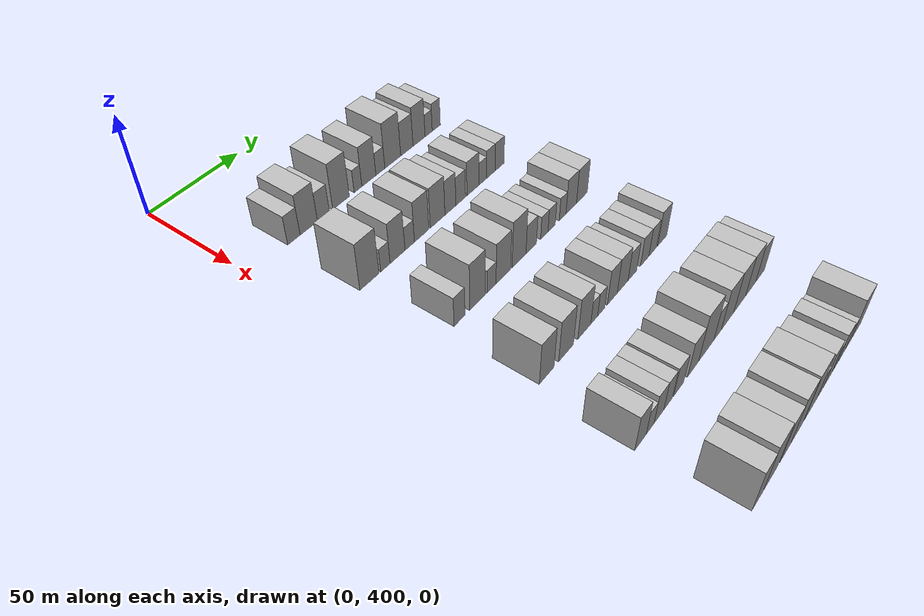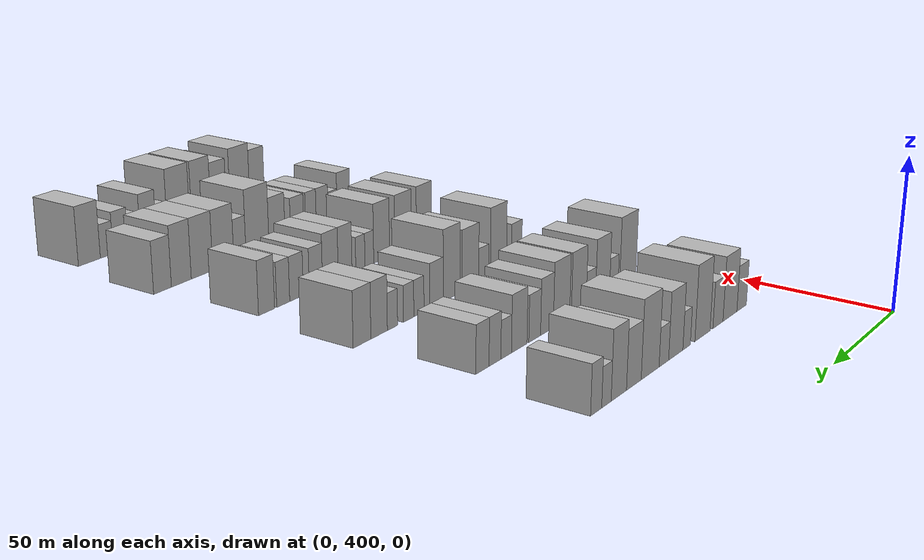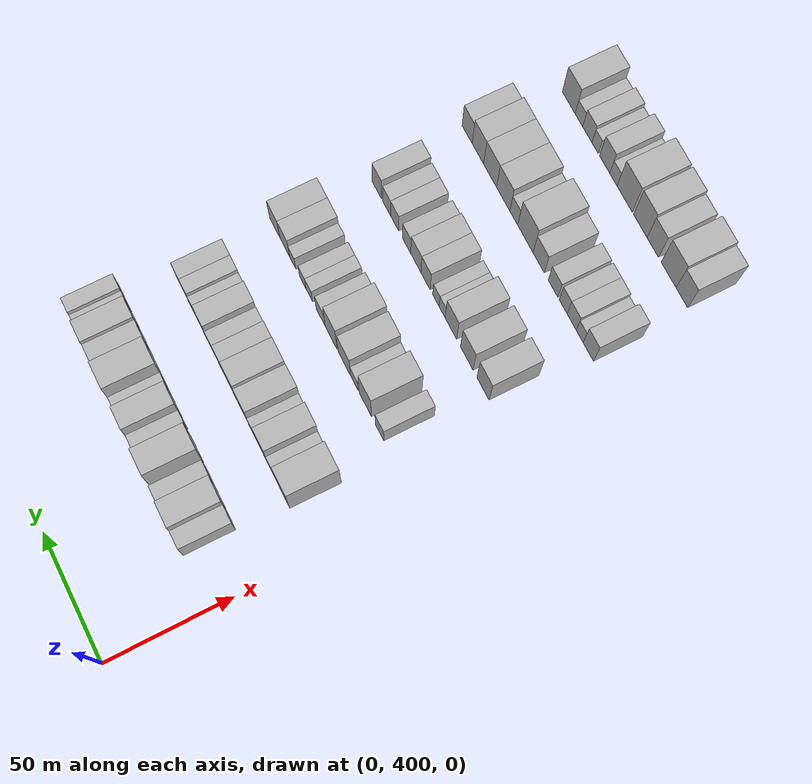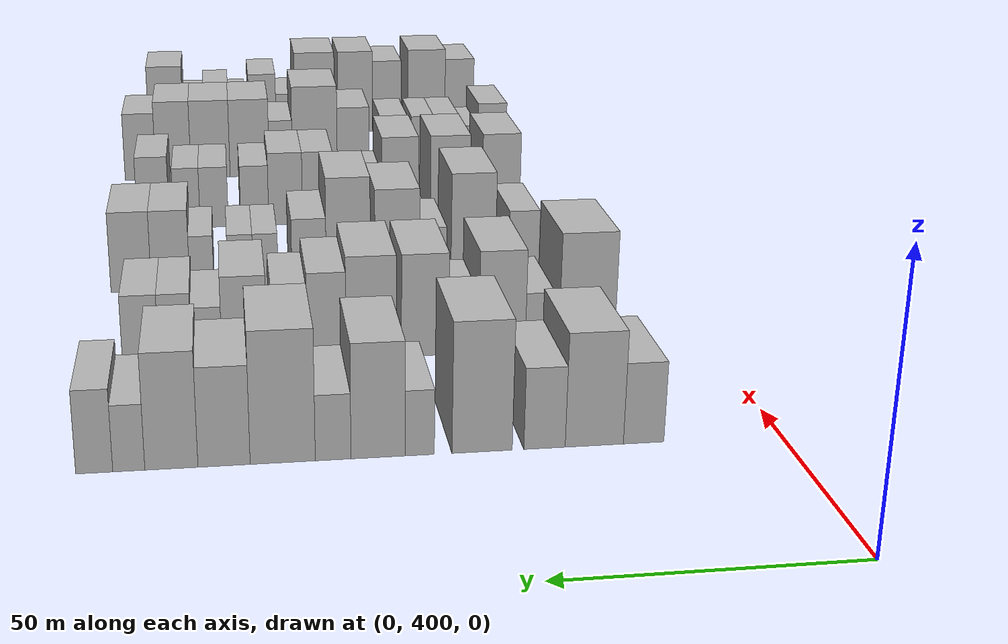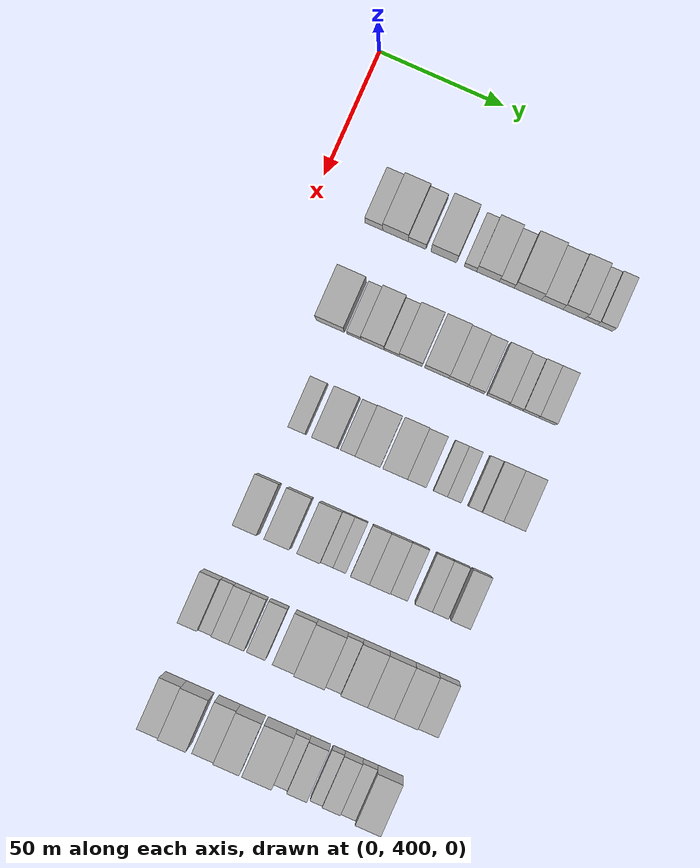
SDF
<sdf version="1.6">
 <world name="default">
  <model name="building_105">
   <static>1</static>
   <pose>50.0000 424.2901 0 0.000000 0.000000 0.000000</pose>
   <link name="link">
    <pose>0 0 7.50 0 0 0</pose>
    <collision name="collision"><geometry><box><size>20.0000 7.0942 15.0000</size></box></geometry></collision>
    <visual name="visual">
     <cast_shadows>0</cast_shadows>
     <geometry><box><size>20.0000 7.0942 15.0000</size></box></geometry>
     <material>
      <script>
       <uri>model://HANNAS_wall/materials/scripts</uri>
       <uri>model://HANNAS_wall/materials/textures</uri>
       <name>vrc/HANNAS_wall</name>
      </script>
     </material>
    </visual>
   </link>
  </model>
  <model name="building_106">
   <static>1</static>
   <pose>50.0000 432.9012 0 0.000000 0.000000 0.000000</pose>
   <link name="link">
    <pose>0 0 10.50 0 0 0</pose>
    <collision name="collision"><geometry><box><size>20.0000 10.1280 21.0000</size></box></geometry></collision>
    <visual name="visual">
     <cast_shadows>0</cast_shadows>
     <geometry><box><size>20.0000 10.1280 21.0000</size></box></geometry>
     <material>
      <script>
       <uri>model://HANNAS_wall/materials/scripts</uri>
       <uri>model://HANNAS_wall/materials/textures</uri>
       <name>vrc/HANNAS_wall</name>
      </script>
     </material>
    </visual>
   </link>
  </model>
  <model name="building_107">
   <static>1</static>
   <pose>50.0000 441.5331 0 0.000000 0.000000 0.000000</pose>
   <link name="link">
    <pose>0 0 7.50 0 0 0</pose>
    <collision name="collision"><geometry><box><size>20.0000 7.1359 15.0000</size></box></geometry></collision>
    <visual name="visual">
     <cast_shadows>0</cast_shadows>
     <geometry><box><size>20.0000 7.1359 15.0000</size></box></geometry>
     <material>
      <script>
       <uri>model://HANNAS_wall/materials/scripts</uri>
       <uri>model://HANNAS_wall/materials/textures</uri>
       <name>vrc/HANNAS_wall</name>
      </script>
     </material>
    </visual>
   </link>
  </model>
  <model name="building_108">
   <static>1</static>
   <pose>50.0000 452.2621 0 0.000000 0.000000 0.000000</pose>
   <link name="link">
    <pose>0 0 12.00 0 0 0</pose>
    <collision name="collision"><geometry><box><size>20.0000 10.3221 24.0000</size></box></geometry></collision>
    <visual name="visual">
     <cast_shadows>0</cast_shadows>
     <geometry><box><size>20.0000 10.3221 24.0000</size></box></geometry>
     <material>
      <script>
       <uri>model://HANNAS_wall/materials/scripts</uri>
       <uri>model://HANNAS_wall/materials/textures</uri>
       <name>vrc/HANNAS_wall</name>
      </script>
     </material>
    </visual>
   </link>
  </model>
  <model name="building_109">
   <static>1</static>
   <pose>50.0000 462.8993 0 0.000000 0.000000 0.000000</pose>
   <link name="link">
    <pose>0 0 6.00 0 0 0</pose>
    <collision name="collision"><geometry><box><size>20.0000 4.9524 12.0000</size></box></geometry></collision>
    <visual name="visual">
     <cast_shadows>0</cast_shadows>
     <geometry><box><size>20.0000 4.9524 12.0000</size></box></geometry>
     <material>
      <script>
       <uri>model://HANNAS_wall/materials/scripts</uri>
       <uri>model://HANNAS_wall/materials/textures</uri>
       <name>vrc/HANNAS_wall</name>
      </script>
     </material>
    </visual>
   </link>
  </model>
  <model name="building_110">
   <static>1</static>
   <pose>50.0000 469.9442 0 0.000000 0.000000 0.000000</pose>
   <link name="link">
    <pose>0 0 10.50 0 0 0</pose>
    <collision name="collision"><geometry><box><size>20.0000 9.1373 21.0000</size></box></geometry></collision>
    <visual name="visual">
     <cast_shadows>0</cast_shadows>
     <geometry><box><size>20.0000 9.1373 21.0000</size></box></geometry>
     <material>
      <script>
       <uri>model://HANNAS_wall/materials/scripts</uri>
       <uri>model://HANNAS_wall/materials/textures</uri>
       <name>vrc/HANNAS_wall</name>
      </script>
     </material>
    </visual>
   </link>
  </model>
  <model name="building_111">
   <static>1</static>
   <pose>50.0000 477.4980 0 0.000000 0.000000 0.000000</pose>
   <link name="link">
    <pose>0 0 6.00 0 0 0</pose>
    <collision name="collision"><geometry><box><size>20.0000 5.9704 12.0000</size></box></geometry></collision>
    <visual name="visual">
     <cast_shadows>0</cast_shadows>
     <geometry><box><size>20.0000 5.9704 12.0000</size></box></geometry>
     <material>
      <script>
       <uri>model://HANNAS_wall/materials/scripts</uri>
       <uri>model://HANNAS_wall/materials/textures</uri>
       <name>vrc/HANNAS_wall</name>
      </script>
     </material>
    </visual>
   </link>
  </model>
  <model name="building_112">
   <static>1</static>
   <pose>50.0000 485.8997 0 0.000000 0.000000 0.000000</pose>
   <link name="link">
    <pose>0 0 12.00 0 0 0</pose>
    <collision name="collision"><geometry><box><size>20.0000 10.8329 24.0000</size></box></geometry></collision>
    <visual name="visual">
     <cast_shadows>0</cast_shadows>
     <geometry><box><size>20.0000 10.8329 24.0000</size></box></geometry>
     <material>
      <script>
       <uri>model://HANNAS_wall/materials/scripts</uri>
       <uri>model://HANNAS_wall/materials/textures</uri>
       <name>vrc/HANNAS_wall</name>
      </script>
     </material>
    </visual>
   </link>
  </model>
  <model name="building_113">
   <static>1</static>
   <pose>50.0000 495.6223 0 0.000000 0.000000 0.000000</pose>
   <link name="link">
    <pose>0 0 9.00 0 0 0</pose>
    <collision name="collision"><geometry><box><size>20.0000 8.6124 18.0000</size></box></geometry></collision>
    <visual name="visual">
     <cast_shadows>0</cast_shadows>
     <geometry><box><size>20.0000 8.6124 18.0000</size></box></geometry>
     <material>
      <script>
       <uri>model://HANNAS_wall/materials/scripts</uri>
       <uri>model://HANNAS_wall/materials/textures</uri>
       <name>vrc/HANNAS_wall</name>
      </script>
     </material>
    </visual>
   </link>
  </model>
  <model name="building_114">
   <static>1</static>
   <pose>50.0000 504.2723 0 0.000000 0.000000 0.000000</pose>
   <link name="link">
    <pose>0 0 10.50 0 0 0</pose>
    <collision name="collision"><geometry><box><size>20.0000 8.6876 21.0000</size></box></geometry></collision>
    <visual name="visual">
     <cast_shadows>0</cast_shadows>
     <geometry><box><size>20.0000 8.6876 21.0000</size></box></geometry>
     <material>
      <script>
       <uri>model://HANNAS_wall/materials/scripts</uri>
       <uri>model://HANNAS_wall/materials/textures</uri>
       <name>vrc/HANNAS_wall</name>
      </script>
     </material>
    </visual>
   </link>
  </model>
  <model name="building_115">
   <static>1</static>
   <pose>50.0000 511.2265 0 0.000000 0.000000 0.000000</pose>
   <link name="link">
    <pose>0 0 6.00 0 0 0</pose>
    <collision name="collision"><geometry><box><size>20.0000 5.2208 12.0000</size></box></geometry></collision>
    <visual name="visual">
     <cast_shadows>0</cast_shadows>
     <geometry><box><size>20.0000 5.2208 12.0000</size></box></geometry>
     <material>
      <script>
       <uri>model://HANNAS_wall/materials/scripts</uri>
       <uri>model://HANNAS_wall/materials/textures</uri>
       <name>vrc/HANNAS_wall</name>
      </script>
     </material>
    </visual>
   </link>
  </model>
  <model name="building_116">
   <static>1</static>
   <pose>50.0000 516.8386 0 0.000000 0.000000 0.000000</pose>
   <link name="link">
    <pose>0 0 7.50 0 0 0</pose>
    <collision name="collision"><geometry><box><size>20.0000 6.0033 15.0000</size></box></geometry></collision>
    <visual name="visual">
     <cast_shadows>0</cast_shadows>
     <geometry><box><size>20.0000 6.0033 15.0000</size></box></geometry>
     <material>
      <script>
       <uri>model://HANNAS_wall/materials/scripts</uri>
       <uri>model://HANNAS_wall/materials/textures</uri>
       <name>vrc/HANNAS_wall</name>
      </script>
     </material>
    </visual>
   </link>
  </model>
  <model name="building_237">
   <static>1</static>
   <pose>90.0000 424.5723 0 0.000000 0.000000 0.000000</pose>
   <link name="link">
    <pose>0 0 12.00 0 0 0</pose>
    <collision name="collision"><geometry><box><size>20.0000 11.1459 24.0000</size></box></geometry></collision>
    <visual name="visual">
     <cast_shadows>0</cast_shadows>
     <geometry><box><size>20.0000 11.1459 24.0000</size></box></geometry>
     <material>
      <script>
       <uri>model://HANNAS_wall/materials/scripts</uri>
       <uri>model://HANNAS_wall/materials/textures</uri>
       <name>vrc/HANNAS_wall</name>
      </script>
     </material>
    </visual>
   </link>
  </model>
  <model name="building_238">
   <static>1</static>
   <pose>90.0000 433.9766 0 0.000000 0.000000 0.000000</pose>
   <link name="link">
    <pose>0 0 6.00 0 0 0</pose>
    <collision name="collision"><geometry><box><size>20.0000 5.6627 12.0000</size></box></geometry></collision>
    <visual name="visual">
     <cast_shadows>0</cast_shadows>
     <geometry><box><size>20.0000 5.6627 12.0000</size></box></geometry>
     <material>
      <script>
       <uri>model://HANNAS_wall/materials/scripts</uri>
       <uri>model://HANNAS_wall/materials/textures</uri>
       <name>vrc/HANNAS_wall</name>
      </script>
     </material>
    </visual>
   </link>
  </model>
  <model name="building_239">
   <static>1</static>
   <pose>90.0000 441.3888 0 0.000000 0.000000 0.000000</pose>
   <link name="link">
    <pose>0 0 10.50 0 0 0</pose>
    <collision name="collision"><geometry><box><size>20.0000 9.1617 21.0000</size></box></geometry></collision>
    <visual name="visual">
     <cast_shadows>0</cast_shadows>
     <geometry><box><size>20.0000 9.1617 21.0000</size></box></geometry>
     <material>
      <script>
       <uri>model://HANNAS_wall/materials/scripts</uri>
       <uri>model://HANNAS_wall/materials/textures</uri>
       <name>vrc/HANNAS_wall</name>
      </script>
     </material>
    </visual>
   </link>
  </model>
  <model name="building_240">
   <static>1</static>
   <pose>90.0000 448.9365 0 0.000000 0.000000 0.000000</pose>
   <link name="link">
    <pose>0 0 6.00 0 0 0</pose>
    <collision name="collision"><geometry><box><size>20.0000 5.9335 12.0000</size></box></geometry></collision>
    <visual name="visual">
     <cast_shadows>0</cast_shadows>
     <geometry><box><size>20.0000 5.9335 12.0000</size></box></geometry>
     <material>
      <script>
       <uri>model://HANNAS_wall/materials/scripts</uri>
       <uri>model://HANNAS_wall/materials/textures</uri>
       <name>vrc/HANNAS_wall</name>
      </script>
     </material>
    </visual>
   </link>
  </model>
  <model name="building_241">
   <static>1</static>
   <pose>90.0000 456.5096 0 0.000000 0.000000 0.000000</pose>
   <link name="link">
    <pose>0 0 10.50 0 0 0</pose>
    <collision name="collision"><geometry><box><size>20.0000 9.2127 21.0000</size></box></geometry></collision>
    <visual name="visual">
     <cast_shadows>0</cast_shadows>
     <geometry><box><size>20.0000 9.2127 21.0000</size></box></geometry>
     <material>
      <script>
       <uri>model://HANNAS_wall/materials/scripts</uri>
       <uri>model://HANNAS_wall/materials/textures</uri>
       <name>vrc/HANNAS_wall</name>
      </script>
     </material>
    </visual>
   </link>
  </model>
  <model name="building_242">
   <static>1</static>
   <pose>90.0000 466.9818 0 0.000000 0.000000 0.000000</pose>
   <link name="link">
    <pose>0 0 10.50 0 0 0</pose>
    <collision name="collision"><geometry><box><size>20.0000 9.7318 21.0000</size></box></geometry></collision>
    <visual name="visual">
     <cast_shadows>0</cast_shadows>
     <geometry><box><size>20.0000 9.7318 21.0000</size></box></geometry>
     <material>
      <script>
       <uri>model://HANNAS_wall/materials/scripts</uri>
       <uri>model://HANNAS_wall/materials/textures</uri>
       <name>vrc/HANNAS_wall</name>
      </script>
     </material>
    </visual>
   </link>
  </model>
  <model name="building_243">
   <static>1</static>
   <pose>90.0000 475.5731 0 0.000000 0.000000 0.000000</pose>
   <link name="link">
    <pose>0 0 9.00 0 0 0</pose>
    <collision name="collision"><geometry><box><size>20.0000 7.4509 18.0000</size></box></geometry></collision>
    <visual name="visual">
     <cast_shadows>0</cast_shadows>
     <geometry><box><size>20.0000 7.4509 18.0000</size></box></geometry>
     <material>
      <script>
       <uri>model://HANNAS_wall/materials/scripts</uri>
       <uri>model://HANNAS_wall/materials/textures</uri>
       <name>vrc/HANNAS_wall</name>
      </script>
     </material>
    </visual>
   </link>
  </model>
  <model name="building_244">
   <static>1</static>
   <pose>90.0000 482.6487 0 0.000000 0.000000 0.000000</pose>
   <link name="link">
    <pose>0 0 7.50 0 0 0</pose>
    <collision name="collision"><geometry><box><size>20.0000 6.7003 15.0000</size></box></geometry></collision>
    <visual name="visual">
     <cast_shadows>0</cast_shadows>
     <geometry><box><size>20.0000 6.7003 15.0000</size></box></geometry>
     <material>
      <script>
       <uri>model://HANNAS_wall/materials/scripts</uri>
       <uri>model://HANNAS_wall/materials/textures</uri>
       <name>vrc/HANNAS_wall</name>
      </script>
     </material>
    </visual>
   </link>
  </model>
  <model name="building_245">
   <static>1</static>
   <pose>90.0000 491.2784 0 0.000000 0.000000 0.000000</pose>
   <link name="link">
    <pose>0 0 9.00 0 0 0</pose>
    <collision name="collision"><geometry><box><size>20.0000 8.5590 18.0000</size></box></geometry></collision>
    <visual name="visual">
     <cast_shadows>0</cast_shadows>
     <geometry><box><size>20.0000 8.5590 18.0000</size></box></geometry>
     <material>
      <script>
       <uri>model://HANNAS_wall/materials/scripts</uri>
       <uri>model://HANNAS_wall/materials/textures</uri>
       <name>vrc/HANNAS_wall</name>
      </script>
     </material>
    </visual>
   </link>
  </model>
  <model name="building_246">
   <static>1</static>
   <pose>90.0000 498.4065 0 0.000000 0.000000 0.000000</pose>
   <link name="link">
    <pose>0 0 6.00 0 0 0</pose>
    <collision name="collision"><geometry><box><size>20.0000 5.6973 12.0000</size></box></geometry></collision>
    <visual name="visual">
     <cast_shadows>0</cast_shadows>
     <geometry><box><size>20.0000 5.6973 12.0000</size></box></geometry>
     <material>
      <script>
       <uri>model://HANNAS_wall/materials/scripts</uri>
       <uri>model://HANNAS_wall/materials/textures</uri>
       <name>vrc/HANNAS_wall</name>
      </script>
     </material>
    </visual>
   </link>
  </model>
  <model name="building_247">
   <static>1</static>
   <pose>90.0000 504.3689 0 0.000000 0.000000 0.000000</pose>
   <link name="link">
    <pose>0 0 7.50 0 0 0</pose>
    <collision name="collision"><geometry><box><size>20.0000 6.2275 15.0000</size></box></geometry></collision>
    <visual name="visual">
     <cast_shadows>0</cast_shadows>
     <geometry><box><size>20.0000 6.2275 15.0000</size></box></geometry>
     <material>
      <script>
       <uri>model://HANNAS_wall/materials/scripts</uri>
       <uri>model://HANNAS_wall/materials/textures</uri>
       <name>vrc/HANNAS_wall</name>
      </script>
     </material>
    </visual>
   </link>
  </model>
  <model name="building_248">
   <static>1</static>
   <pose>90.0000 510.8841 0 0.000000 0.000000 0.000000</pose>
   <link name="link">
    <pose>0 0 7.50 0 0 0</pose>
    <collision name="collision"><geometry><box><size>20.0000 6.8029 15.0000</size></box></geometry></collision>
    <visual name="visual">
     <cast_shadows>0</cast_shadows>
     <geometry><box><size>20.0000 6.8029 15.0000</size></box></geometry>
     <material>
      <script>
       <uri>model://HANNAS_wall/materials/scripts</uri>
       <uri>model://HANNAS_wall/materials/textures</uri>
       <name>vrc/HANNAS_wall</name>
      </script>
     </material>
    </visual>
   </link>
  </model>
  <model name="building_375">
   <static>1</static>
   <pose>130.0000 429.1087 0 0.000000 0.000000 0.000000</pose>
   <link name="link">
    <pose>0 0 7.50 0 0 0</pose>
    <collision name="collision"><geometry><box><size>20.0000 6.6750 15.0000</size></box></geometry></collision>
    <visual name="visual">
     <cast_shadows>0</cast_shadows>
     <geometry><box><size>20.0000 6.6750 15.0000</size></box></geometry>
     <material>
      <script>
       <uri>model://HANNAS_wall/materials/scripts</uri>
       <uri>model://HANNAS_wall/materials/textures</uri>
       <name>vrc/HANNAS_wall</name>
      </script>
     </material>
    </visual>
   </link>
  </model>
  <model name="building_376">
   <static>1</static>
   <pose>130.0000 440.3710 0 0.000000 0.000000 0.000000</pose>
   <link name="link">
    <pose>0 0 12.00 0 0 0</pose>
    <collision name="collision"><geometry><box><size>20.0000 9.8495 24.0000</size></box></geometry></collision>
    <visual name="visual">
     <cast_shadows>0</cast_shadows>
     <geometry><box><size>20.0000 9.8495 24.0000</size></box></geometry>
     <material>
      <script>
       <uri>model://HANNAS_wall/materials/scripts</uri>
       <uri>model://HANNAS_wall/materials/textures</uri>
       <name>vrc/HANNAS_wall</name>
      </script>
     </material>
    </visual>
   </link>
  </model>
  <model name="building_377">
   <static>1</static>
   <pose>130.0000 449.2761 0 0.000000 0.000000 0.000000</pose>
   <link name="link">
    <pose>0 0 6.00 0 0 0</pose>
    <collision name="collision"><geometry><box><size>20.0000 5.9607 12.0000</size></box></geometry></collision>
    <visual name="visual">
     <cast_shadows>0</cast_shadows>
     <geometry><box><size>20.0000 5.9607 12.0000</size></box></geometry>
     <material>
      <script>
       <uri>model://HANNAS_wall/materials/scripts</uri>
       <uri>model://HANNAS_wall/materials/textures</uri>
       <name>vrc/HANNAS_wall</name>
      </script>
     </material>
    </visual>
   </link>
  </model>
  <model name="building_378">
   <static>1</static>
   <pose>130.0000 457.1550 0 0.000000 0.000000 0.000000</pose>
   <link name="link">
    <pose>0 0 10.50 0 0 0</pose>
    <collision name="collision"><geometry><box><size>20.0000 9.7971 21.0000</size></box></geometry></collision>
    <visual name="visual">
     <cast_shadows>0</cast_shadows>
     <geometry><box><size>20.0000 9.7971 21.0000</size></box></geometry>
     <material>
      <script>
       <uri>model://HANNAS_wall/materials/scripts</uri>
       <uri>model://HANNAS_wall/materials/textures</uri>
       <name>vrc/HANNAS_wall</name>
      </script>
     </material>
    </visual>
   </link>
  </model>
  <model name="building_379">
   <static>1</static>
   <pose>130.0000 467.8586 0 0.000000 0.000000 0.000000</pose>
   <link name="link">
    <pose>0 0 12.00 0 0 0</pose>
    <collision name="collision"><geometry><box><size>20.0000 9.6101 24.0000</size></box></geometry></collision>
    <visual name="visual">
     <cast_shadows>0</cast_shadows>
     <geometry><box><size>20.0000 9.6101 24.0000</size></box></geometry>
     <material>
      <script>
       <uri>model://HANNAS_wall/materials/scripts</uri>
       <uri>model://HANNAS_wall/materials/textures</uri>
       <name>vrc/HANNAS_wall</name>
      </script>
     </material>
    </visual>
   </link>
  </model>
  <model name="building_380">
   <static>1</static>
   <pose>130.0000 476.3832 0 0.000000 0.000000 0.000000</pose>
   <link name="link">
    <pose>0 0 7.50 0 0 0</pose>
    <collision name="collision"><geometry><box><size>20.0000 7.4392 15.0000</size></box></geometry></collision>
    <visual name="visual">
     <cast_shadows>0</cast_shadows>
     <geometry><box><size>20.0000 7.4392 15.0000</size></box></geometry>
     <material>
      <script>
       <uri>model://HANNAS_wall/materials/scripts</uri>
       <uri>model://HANNAS_wall/materials/textures</uri>
       <name>vrc/HANNAS_wall</name>
      </script>
     </material>
    </visual>
   </link>
  </model>
  <model name="building_381">
   <static>1</static>
   <pose>130.0000 485.8040 0 0.000000 0.000000 0.000000</pose>
   <link name="link">
    <pose>0 0 6.00 0 0 0</pose>
    <collision name="collision"><geometry><box><size>20.0000 5.4025 12.0000</size></box></geometry></collision>
    <visual name="visual">
     <cast_shadows>0</cast_shadows>
     <geometry><box><size>20.0000 5.4025 12.0000</size></box></geometry>
     <material>
      <script>
       <uri>model://HANNAS_wall/materials/scripts</uri>
       <uri>model://HANNAS_wall/materials/textures</uri>
       <name>vrc/HANNAS_wall</name>
      </script>
     </material>
    </visual>
   </link>
  </model>
  <model name="building_382">
   <static>1</static>
   <pose>130.0000 491.2211 0 0.000000 0.000000 0.000000</pose>
   <link name="link">
    <pose>0 0 6.00 0 0 0</pose>
    <collision name="collision"><geometry><box><size>20.0000 5.4317 12.0000</size></box></geometry></collision>
    <visual name="visual">
     <cast_shadows>0</cast_shadows>
     <geometry><box><size>20.0000 5.4317 12.0000</size></box></geometry>
     <material>
      <script>
       <uri>model://HANNAS_wall/materials/scripts</uri>
       <uri>model://HANNAS_wall/materials/textures</uri>
       <name>vrc/HANNAS_wall</name>
      </script>
     </material>
    </visual>
   </link>
  </model>
  <model name="building_383">
   <static>1</static>
   <pose>130.0000 499.5328 0 0.000000 0.000000 0.000000</pose>
   <link name="link">
    <pose>0 0 6.00 0 0 0</pose>
    <collision name="collision"><geometry><box><size>20.0000 5.1917 12.0000</size></box></geometry></collision>
    <visual name="visual">
     <cast_shadows>0</cast_shadows>
     <geometry><box><size>20.0000 5.1917 12.0000</size></box></geometry>
     <material>
      <script>
       <uri>model://HANNAS_wall/materials/scripts</uri>
       <uri>model://HANNAS_wall/materials/textures</uri>
       <name>vrc/HANNAS_wall</name>
      </script>
     </material>
    </visual>
   </link>
  </model>
  <model name="building_384">
   <static>1</static>
   <pose>130.0000 506.2227 0 0.000000 0.000000 0.000000</pose>
   <link name="link">
    <pose>0 0 9.00 0 0 0</pose>
    <collision name="collision"><geometry><box><size>20.0000 8.1881 18.0000</size></box></geometry></collision>
    <visual name="visual">
     <cast_shadows>0</cast_shadows>
     <geometry><box><size>20.0000 8.1881 18.0000</size></box></geometry>
     <material>
      <script>
       <uri>model://HANNAS_wall/materials/scripts</uri>
       <uri>model://HANNAS_wall/materials/textures</uri>
       <name>vrc/HANNAS_wall</name>
      </script>
     </material>
    </visual>
   </link>
  </model>
  <model name="building_385">
   <static>1</static>
   <pose>130.0000 514.6061 0 0.000000 0.000000 0.000000</pose>
   <link name="link">
    <pose>0 0 9.00 0 0 0</pose>
    <collision name="collision"><geometry><box><size>20.0000 8.5788 18.0000</size></box></geometry></collision>
    <visual name="visual">
     <cast_shadows>0</cast_shadows>
     <geometry><box><size>20.0000 8.5788 18.0000</size></box></geometry>
     <material>
      <script>
       <uri>model://HANNAS_wall/materials/scripts</uri>
       <uri>model://HANNAS_wall/materials/textures</uri>
       <name>vrc/HANNAS_wall</name>
      </script>
     </material>
    </visual>
   </link>
  </model>
  <model name="building_518">
   <static>1</static>
   <pose>170.0000 426.7633 0 0.000000 0.000000 0.000000</pose>
   <link name="link">
    <pose>0 0 10.50 0 0 0</pose>
    <collision name="collision"><geometry><box><size>20.0000 9.3373 21.0000</size></box></geometry></collision>
    <visual name="visual">
     <cast_shadows>0</cast_shadows>
     <geometry><box><size>20.0000 9.3373 21.0000</size></box></geometry>
     <material>
      <script>
       <uri>model://HANNAS_wall/materials/scripts</uri>
       <uri>model://HANNAS_wall/materials/textures</uri>
       <name>vrc/HANNAS_wall</name>
      </script>
     </material>
    </visual>
   </link>
  </model>
  <model name="building_519">
   <static>1</static>
   <pose>170.0000 439.3193 0 0.000000 0.000000 0.000000</pose>
   <link name="link">
    <pose>0 0 10.50 0 0 0</pose>
    <collision name="collision"><geometry><box><size>20.0000 9.7746 21.0000</size></box></geometry></collision>
    <visual name="visual">
     <cast_shadows>0</cast_shadows>
     <geometry><box><size>20.0000 9.7746 21.0000</size></box></geometry>
     <material>
      <script>
       <uri>model://HANNAS_wall/materials/scripts</uri>
       <uri>model://HANNAS_wall/materials/textures</uri>
       <name>vrc/HANNAS_wall</name>
      </script>
     </material>
    </visual>
   </link>
  </model>
  <model name="building_520">
   <static>1</static>
   <pose>170.0000 451.6900 0 0.000000 0.000000 0.000000</pose>
   <link name="link">
    <pose>0 0 10.50 0 0 0</pose>
    <collision name="collision"><geometry><box><size>20.0000 8.9669 21.0000</size></box></geometry></collision>
    <visual name="visual">
     <cast_shadows>0</cast_shadows>
     <geometry><box><size>20.0000 8.9669 21.0000</size></box></geometry>
     <material>
      <script>
       <uri>model://HANNAS_wall/materials/scripts</uri>
       <uri>model://HANNAS_wall/materials/textures</uri>
       <name>vrc/HANNAS_wall</name>
      </script>
     </material>
    </visual>
   </link>
  </model>
  <model name="building_521">
   <static>1</static>
   <pose>170.0000 458.6050 0 0.000000 0.000000 0.000000</pose>
   <link name="link">
    <pose>0 0 6.00 0 0 0</pose>
    <collision name="collision"><geometry><box><size>20.0000 4.8632 12.0000</size></box></geometry></collision>
    <visual name="visual">
     <cast_shadows>0</cast_shadows>
     <geometry><box><size>20.0000 4.8632 12.0000</size></box></geometry>
     <material>
      <script>
       <uri>model://HANNAS_wall/materials/scripts</uri>
       <uri>model://HANNAS_wall/materials/textures</uri>
       <name>vrc/HANNAS_wall</name>
      </script>
     </material>
    </visual>
   </link>
  </model>
  <model name="building_522">
   <static>1</static>
   <pose>170.0000 463.5516 0 0.000000 0.000000 0.000000</pose>
   <link name="link">
    <pose>0 0 6.00 0 0 0</pose>
    <collision name="collision"><geometry><box><size>20.0000 5.0298 12.0000</size></box></geometry></collision>
    <visual name="visual">
     <cast_shadows>0</cast_shadows>
     <geometry><box><size>20.0000 5.0298 12.0000</size></box></geometry>
     <material>
      <script>
       <uri>model://HANNAS_wall/materials/scripts</uri>
       <uri>model://HANNAS_wall/materials/textures</uri>
       <name>vrc/HANNAS_wall</name>
      </script>
     </material>
    </visual>
   </link>
  </model>
  <model name="building_523">
   <static>1</static>
   <pose>170.0000 471.7505 0 0.000000 0.000000 0.000000</pose>
   <link name="link">
    <pose>0 0 9.00 0 0 0</pose>
    <collision name="collision"><geometry><box><size>20.0000 7.3681 18.0000</size></box></geometry></collision>
    <visual name="visual">
     <cast_shadows>0</cast_shadows>
     <geometry><box><size>20.0000 7.3681 18.0000</size></box></geometry>
     <material>
      <script>
       <uri>model://HANNAS_wall/materials/scripts</uri>
       <uri>model://HANNAS_wall/materials/textures</uri>
       <name>vrc/HANNAS_wall</name>
      </script>
     </material>
    </visual>
   </link>
  </model>
  <model name="building_524">
   <static>1</static>
   <pose>170.0000 479.5307 0 0.000000 0.000000 0.000000</pose>
   <link name="link">
    <pose>0 0 9.00 0 0 0</pose>
    <collision name="collision"><geometry><box><size>20.0000 8.1923 18.0000</size></box></geometry></collision>
    <visual name="visual">
     <cast_shadows>0</cast_shadows>
     <geometry><box><size>20.0000 8.1923 18.0000</size></box></geometry>
     <material>
      <script>
       <uri>model://HANNAS_wall/materials/scripts</uri>
       <uri>model://HANNAS_wall/materials/textures</uri>
       <name>vrc/HANNAS_wall</name>
      </script>
     </material>
    </visual>
   </link>
  </model>
  <model name="building_525">
   <static>1</static>
   <pose>170.0000 486.9849 0 0.000000 0.000000 0.000000</pose>
   <link name="link">
    <pose>0 0 7.50 0 0 0</pose>
    <collision name="collision"><geometry><box><size>20.0000 6.7159 15.0000</size></box></geometry></collision>
    <visual name="visual">
     <cast_shadows>0</cast_shadows>
     <geometry><box><size>20.0000 6.7159 15.0000</size></box></geometry>
     <material>
      <script>
       <uri>model://HANNAS_wall/materials/scripts</uri>
       <uri>model://HANNAS_wall/materials/textures</uri>
       <name>vrc/HANNAS_wall</name>
      </script>
     </material>
    </visual>
   </link>
  </model>
  <model name="building_526">
   <static>1</static>
   <pose>170.0000 496.7155 0 0.000000 0.000000 0.000000</pose>
   <link name="link">
    <pose>0 0 7.50 0 0 0</pose>
    <collision name="collision"><geometry><box><size>20.0000 6.7454 15.0000</size></box></geometry></collision>
    <visual name="visual">
     <cast_shadows>0</cast_shadows>
     <geometry><box><size>20.0000 6.7454 15.0000</size></box></geometry>
     <material>
      <script>
       <uri>model://HANNAS_wall/materials/scripts</uri>
       <uri>model://HANNAS_wall/materials/textures</uri>
       <name>vrc/HANNAS_wall</name>
      </script>
     </material>
    </visual>
   </link>
  </model>
  <model name="building_527">
   <static>1</static>
   <pose>170.0000 503.2382 0 0.000000 0.000000 0.000000</pose>
   <link name="link">
    <pose>0 0 7.50 0 0 0</pose>
    <collision name="collision"><geometry><box><size>20.0000 6.2999 15.0000</size></box></geometry></collision>
    <visual name="visual">
     <cast_shadows>0</cast_shadows>
     <geometry><box><size>20.0000 6.2999 15.0000</size></box></geometry>
     <material>
      <script>
       <uri>model://HANNAS_wall/materials/scripts</uri>
       <uri>model://HANNAS_wall/materials/textures</uri>
       <name>vrc/HANNAS_wall</name>
      </script>
     </material>
    </visual>
   </link>
  </model>
  <model name="building_528">
   <static>1</static>
   <pose>170.0000 511.1828 0 0.000000 0.000000 0.000000</pose>
   <link name="link">
    <pose>0 0 9.00 0 0 0</pose>
    <collision name="collision"><geometry><box><size>20.0000 7.5893 18.0000</size></box></geometry></collision>
    <visual name="visual">
     <cast_shadows>0</cast_shadows>
     <geometry><box><size>20.0000 7.5893 18.0000</size></box></geometry>
     <material>
      <script>
       <uri>model://HANNAS_wall/materials/scripts</uri>
       <uri>model://HANNAS_wall/materials/textures</uri>
       <name>vrc/HANNAS_wall</name>
      </script>
     </material>
    </visual>
   </link>
  </model>
  <model name="building_655">
   <static>1</static>
   <pose>210.0000 421.8358 0 0.000000 0.000000 0.000000</pose>
   <link name="link">
    <pose>0 0 9.00 0 0 0</pose>
    <collision name="collision"><geometry><box><size>20.0000 7.6905 18.0000</size></box></geometry></collision>
    <visual name="visual">
     <cast_shadows>0</cast_shadows>
     <geometry><box><size>20.0000 7.6905 18.0000</size></box></geometry>
     <material>
      <script>
       <uri>model://HANNAS_wall/materials/scripts</uri>
       <uri>model://HANNAS_wall/materials/textures</uri>
       <name>vrc/HANNAS_wall</name>
      </script>
     </material>
    </visual>
   </link>
  </model>
  <model name="building_656">
   <static>1</static>
   <pose>210.0000 428.3003 0 0.000000 0.000000 0.000000</pose>
   <link name="link">
    <pose>0 0 6.00 0 0 0</pose>
    <collision name="collision"><geometry><box><size>20.0000 5.2385 12.0000</size></box></geometry></collision>
    <visual name="visual">
     <cast_shadows>0</cast_shadows>
     <geometry><box><size>20.0000 5.2385 12.0000</size></box></geometry>
     <material>
      <script>
       <uri>model://HANNAS_wall/materials/scripts</uri>
       <uri>model://HANNAS_wall/materials/textures</uri>
       <name>vrc/HANNAS_wall</name>
      </script>
     </material>
    </visual>
   </link>
  </model>
  <model name="building_657">
   <static>1</static>
   <pose>210.0000 434.3405 0 0.000000 0.000000 0.000000</pose>
   <link name="link">
    <pose>0 0 7.50 0 0 0</pose>
    <collision name="collision"><geometry><box><size>20.0000 6.8418 15.0000</size></box></geometry></collision>
    <visual name="visual">
     <cast_shadows>0</cast_shadows>
     <geometry><box><size>20.0000 6.8418 15.0000</size></box></geometry>
     <material>
      <script>
       <uri>model://HANNAS_wall/materials/scripts</uri>
       <uri>model://HANNAS_wall/materials/textures</uri>
       <name>vrc/HANNAS_wall</name>
      </script>
     </material>
    </visual>
   </link>
  </model>
  <model name="building_658">
   <static>1</static>
   <pose>210.0000 440.7841 0 0.000000 0.000000 0.000000</pose>
   <link name="link">
    <pose>0 0 7.50 0 0 0</pose>
    <collision name="collision"><geometry><box><size>20.0000 6.0456 15.0000</size></box></geometry></collision>
    <visual name="visual">
     <cast_shadows>0</cast_shadows>
     <geometry><box><size>20.0000 6.0456 15.0000</size></box></geometry>
     <material>
      <script>
       <uri>model://HANNAS_wall/materials/scripts</uri>
       <uri>model://HANNAS_wall/materials/textures</uri>
       <name>vrc/HANNAS_wall</name>
      </script>
     </material>
    </visual>
   </link>
  </model>
  <model name="building_659">
   <static>1</static>
   <pose>210.0000 448.4721 0 0.000000 0.000000 0.000000</pose>
   <link name="link">
    <pose>0 0 7.50 0 0 0</pose>
    <collision name="collision"><geometry><box><size>20.0000 7.3304 15.0000</size></box></geometry></collision>
    <visual name="visual">
     <cast_shadows>0</cast_shadows>
     <geometry><box><size>20.0000 7.3304 15.0000</size></box></geometry>
     <material>
      <script>
       <uri>model://HANNAS_wall/materials/scripts</uri>
       <uri>model://HANNAS_wall/materials/textures</uri>
       <name>vrc/HANNAS_wall</name>
      </script>
     </material>
    </visual>
   </link>
  </model>
  <model name="building_660">
   <static>1</static>
   <pose>210.0000 459.4520 0 0.000000 0.000000 0.000000</pose>
   <link name="link">
    <pose>0 0 9.00 0 0 0</pose>
    <collision name="collision"><geometry><box><size>20.0000 8.6294 18.0000</size></box></geometry></collision>
    <visual name="visual">
     <cast_shadows>0</cast_shadows>
     <geometry><box><size>20.0000 8.6294 18.0000</size></box></geometry>
     <material>
      <script>
       <uri>model://HANNAS_wall/materials/scripts</uri>
       <uri>model://HANNAS_wall/materials/textures</uri>
       <name>vrc/HANNAS_wall</name>
      </script>
     </material>
    </visual>
   </link>
  </model>
  <model name="building_661">
   <static>1</static>
   <pose>210.0000 469.7653 0 0.000000 0.000000 0.000000</pose>
   <link name="link">
    <pose>0 0 12.00 0 0 0</pose>
    <collision name="collision"><geometry><box><size>20.0000 11.9972 24.0000</size></box></geometry></collision>
    <visual name="visual">
     <cast_shadows>0</cast_shadows>
     <geometry><box><size>20.0000 11.9972 24.0000</size></box></geometry>
     <material>
      <script>
       <uri>model://HANNAS_wall/materials/scripts</uri>
       <uri>model://HANNAS_wall/materials/textures</uri>
       <name>vrc/HANNAS_wall</name>
      </script>
     </material>
    </visual>
   </link>
  </model>
  <model name="building_662">
   <static>1</static>
   <pose>210.0000 478.8574 0 0.000000 0.000000 0.000000</pose>
   <link name="link">
    <pose>0 0 7.50 0 0 0</pose>
    <collision name="collision"><geometry><box><size>20.0000 6.1870 15.0000</size></box></geometry></collision>
    <visual name="visual">
     <cast_shadows>0</cast_shadows>
     <geometry><box><size>20.0000 6.1870 15.0000</size></box></geometry>
     <material>
      <script>
       <uri>model://HANNAS_wall/materials/scripts</uri>
       <uri>model://HANNAS_wall/materials/textures</uri>
       <name>vrc/HANNAS_wall</name>
      </script>
     </material>
    </visual>
   </link>
  </model>
  <model name="building_663">
   <static>1</static>
   <pose>210.0000 487.1656 0 0.000000 0.000000 0.000000</pose>
   <link name="link">
    <pose>0 0 10.50 0 0 0</pose>
    <collision name="collision"><geometry><box><size>20.0000 10.4295 21.0000</size></box></geometry></collision>
    <visual name="visual">
     <cast_shadows>0</cast_shadows>
     <geometry><box><size>20.0000 10.4295 21.0000</size></box></geometry>
     <material>
      <script>
       <uri>model://HANNAS_wall/materials/scripts</uri>
       <uri>model://HANNAS_wall/materials/textures</uri>
       <name>vrc/HANNAS_wall</name>
      </script>
     </material>
    </visual>
   </link>
  </model>
  <model name="building_664">
   <static>1</static>
   <pose>210.0000 497.5308 0 0.000000 0.000000 0.000000</pose>
   <link name="link">
    <pose>0 0 10.50 0 0 0</pose>
    <collision name="collision"><geometry><box><size>20.0000 10.3009 21.0000</size></box></geometry></collision>
    <visual name="visual">
     <cast_shadows>0</cast_shadows>
     <geometry><box><size>20.0000 10.3009 21.0000</size></box></geometry>
     <material>
      <script>
       <uri>model://HANNAS_wall/materials/scripts</uri>
       <uri>model://HANNAS_wall/materials/textures</uri>
       <name>vrc/HANNAS_wall</name>
      </script>
     </material>
    </visual>
   </link>
  </model>
  <model name="building_665">
   <static>1</static>
   <pose>210.0000 507.2967 0 0.000000 0.000000 0.000000</pose>
   <link name="link">
    <pose>0 0 10.50 0 0 0</pose>
    <collision name="collision"><geometry><box><size>20.0000 9.2308 21.0000</size></box></geometry></collision>
    <visual name="visual">
     <cast_shadows>0</cast_shadows>
     <geometry><box><size>20.0000 9.2308 21.0000</size></box></geometry>
     <material>
      <script>
       <uri>model://HANNAS_wall/materials/scripts</uri>
       <uri>model://HANNAS_wall/materials/textures</uri>
       <name>vrc/HANNAS_wall</name>
      </script>
     </material>
    </visual>
   </link>
  </model>
  <model name="building_666">
   <static>1</static>
   <pose>210.0000 515.9358 0 0.000000 0.000000 0.000000</pose>
   <link name="link">
    <pose>0 0 9.00 0 0 0</pose>
    <collision name="collision"><geometry><box><size>20.0000 8.0474 18.0000</size></box></geometry></collision>
    <visual name="visual">
     <cast_shadows>0</cast_shadows>
     <geometry><box><size>20.0000 8.0474 18.0000</size></box></geometry>
     <material>
      <script>
       <uri>model://HANNAS_wall/materials/scripts</uri>
       <uri>model://HANNAS_wall/materials/textures</uri>
       <name>vrc/HANNAS_wall</name>
      </script>
     </material>
    </visual>
   </link>
  </model>
  <model name="building_796">
   <static>1</static>
   <pose>250.0000 424.4468 0 0.000000 0.000000 0.000000</pose>
   <link name="link">
    <pose>0 0 10.50 0 0 0</pose>
    <collision name="collision"><geometry><box><size>20.0000 8.4977 21.0000</size></box></geometry></collision>
    <visual name="visual">
     <cast_shadows>0</cast_shadows>
     <geometry><box><size>20.0000 8.4977 21.0000</size></box></geometry>
     <material>
      <script>
       <uri>model://HANNAS_wall/materials/scripts</uri>
       <uri>model://HANNAS_wall/materials/textures</uri>
       <name>vrc/HANNAS_wall</name>
      </script>
     </material>
    </visual>
   </link>
  </model>
  <model name="building_797">
   <static>1</static>
   <pose>250.0000 434.1774 0 0.000000 0.000000 0.000000</pose>
   <link name="link">
    <pose>0 0 12.00 0 0 0</pose>
    <collision name="collision"><geometry><box><size>20.0000 10.9636 24.0000</size></box></geometry></collision>
    <visual name="visual">
     <cast_shadows>0</cast_shadows>
     <geometry><box><size>20.0000 10.9636 24.0000</size></box></geometry>
     <material>
      <script>
       <uri>model://HANNAS_wall/materials/scripts</uri>
       <uri>model://HANNAS_wall/materials/textures</uri>
       <name>vrc/HANNAS_wall</name>
      </script>
     </material>
    </visual>
   </link>
  </model>
  <model name="building_798">
   <static>1</static>
   <pose>250.0000 445.9232 0 0.000000 0.000000 0.000000</pose>
   <link name="link">
    <pose>0 0 10.50 0 0 0</pose>
    <collision name="collision"><geometry><box><size>20.0000 8.5279 21.0000</size></box></geometry></collision>
    <visual name="visual">
     <cast_shadows>0</cast_shadows>
     <geometry><box><size>20.0000 8.5279 21.0000</size></box></geometry>
     <material>
      <script>
       <uri>model://HANNAS_wall/materials/scripts</uri>
       <uri>model://HANNAS_wall/materials/textures</uri>
       <name>vrc/HANNAS_wall</name>
      </script>
     </material>
    </visual>
   </link>
  </model>
  <model name="building_799">
   <static>1</static>
   <pose>250.0000 455.2482 0 0.000000 0.000000 0.000000</pose>
   <link name="link">
    <pose>0 0 12.00 0 0 0</pose>
    <collision name="collision"><geometry><box><size>20.0000 10.1222 24.0000</size></box></geometry></collision>
    <visual name="visual">
     <cast_shadows>0</cast_shadows>
     <geometry><box><size>20.0000 10.1222 24.0000</size></box></geometry>
     <material>
      <script>
       <uri>model://HANNAS_wall/materials/scripts</uri>
       <uri>model://HANNAS_wall/materials/textures</uri>
       <name>vrc/HANNAS_wall</name>
      </script>
     </material>
    </visual>
   </link>
  </model>
  <model name="building_800">
   <static>1</static>
   <pose>250.0000 467.0812 0 0.000000 0.000000 0.000000</pose>
   <link name="link">
    <pose>0 0 12.00 0 0 0</pose>
    <collision name="collision"><geometry><box><size>20.0000 11.5438 24.0000</size></box></geometry></collision>
    <visual name="visual">
     <cast_shadows>0</cast_shadows>
     <geometry><box><size>20.0000 11.5438 24.0000</size></box></geometry>
     <material>
      <script>
       <uri>model://HANNAS_wall/materials/scripts</uri>
       <uri>model://HANNAS_wall/materials/textures</uri>
       <name>vrc/HANNAS_wall</name>
      </script>
     </material>
    </visual>
   </link>
  </model>
  <model name="building_801">
   <static>1</static>
   <pose>250.0000 475.6279 0 0.000000 0.000000 0.000000</pose>
   <link name="link">
    <pose>0 0 6.00 0 0 0</pose>
    <collision name="collision"><geometry><box><size>20.0000 5.5496 12.0000</size></box></geometry></collision>
    <visual name="visual">
     <cast_shadows>0</cast_shadows>
     <geometry><box><size>20.0000 5.5496 12.0000</size></box></geometry>
     <material>
      <script>
       <uri>model://HANNAS_wall/materials/scripts</uri>
       <uri>model://HANNAS_wall/materials/textures</uri>
       <name>vrc/HANNAS_wall</name>
      </script>
     </material>
    </visual>
   </link>
  </model>
  <model name="building_802">
   <static>1</static>
   <pose>250.0000 482.3125 0 0.000000 0.000000 0.000000</pose>
   <link name="link">
    <pose>0 0 9.00 0 0 0</pose>
    <collision name="collision"><geometry><box><size>20.0000 7.8195 18.0000</size></box></geometry></collision>
    <visual name="visual">
     <cast_shadows>0</cast_shadows>
     <geometry><box><size>20.0000 7.8195 18.0000</size></box></geometry>
     <material>
      <script>
       <uri>model://HANNAS_wall/materials/scripts</uri>
       <uri>model://HANNAS_wall/materials/textures</uri>
       <name>vrc/HANNAS_wall</name>
      </script>
     </material>
    </visual>
   </link>
  </model>
  <model name="building_803">
   <static>1</static>
   <pose>250.0000 489.6782 0 0.000000 0.000000 0.000000</pose>
   <link name="link">
    <pose>0 0 6.00 0 0 0</pose>
    <collision name="collision"><geometry><box><size>20.0000 4.9118 12.0000</size></box></geometry></collision>
    <visual name="visual">
     <cast_shadows>0</cast_shadows>
     <geometry><box><size>20.0000 4.9118 12.0000</size></box></geometry>
     <material>
      <script>
       <uri>model://HANNAS_wall/materials/scripts</uri>
       <uri>model://HANNAS_wall/materials/textures</uri>
       <name>vrc/HANNAS_wall</name>
      </script>
     </material>
    </visual>
   </link>
  </model>
  <model name="building_804">
   <static>1</static>
   <pose>250.0000 495.7068 0 0.000000 0.000000 0.000000</pose>
   <link name="link">
    <pose>0 0 7.50 0 0 0</pose>
    <collision name="collision"><geometry><box><size>20.0000 7.1455 15.0000</size></box></geometry></collision>
    <visual name="visual">
     <cast_shadows>0</cast_shadows>
     <geometry><box><size>20.0000 7.1455 15.0000</size></box></geometry>
     <material>
      <script>
       <uri>model://HANNAS_wall/materials/scripts</uri>
       <uri>model://HANNAS_wall/materials/textures</uri>
       <name>vrc/HANNAS_wall</name>
      </script>
     </material>
    </visual>
   </link>
  </model>
  <model name="building_805">
   <static>1</static>
   <pose>250.0000 502.2445 0 0.000000 0.000000 0.000000</pose>
   <link name="link">
    <pose>0 0 6.00 0 0 0</pose>
    <collision name="collision"><geometry><box><size>20.0000 5.9298 12.0000</size></box></geometry></collision>
    <visual name="visual">
     <cast_shadows>0</cast_shadows>
     <geometry><box><size>20.0000 5.9298 12.0000</size></box></geometry>
     <material>
      <script>
       <uri>model://HANNAS_wall/materials/scripts</uri>
       <uri>model://HANNAS_wall/materials/textures</uri>
       <name>vrc/HANNAS_wall</name>
      </script>
     </material>
    </visual>
   </link>
  </model>
  <model name="building_806">
   <static>1</static>
   <pose>250.0000 510.1840 0 0.000000 0.000000 0.000000</pose>
   <link name="link">
    <pose>0 0 10.50 0 0 0</pose>
    <collision name="collision"><geometry><box><size>20.0000 9.9491 21.0000</size></box></geometry></collision>
    <visual name="visual">
     <cast_shadows>0</cast_shadows>
     <geometry><box><size>20.0000 9.9491 21.0000</size></box></geometry>
     <material>
      <script>
       <uri>model://HANNAS_wall/materials/scripts</uri>
       <uri>model://HANNAS_wall/materials/textures</uri>
       <name>vrc/HANNAS_wall</name>
      </script>
     </material>
    </visual>
   </link>
  </model>
 </world>
</sdf>
